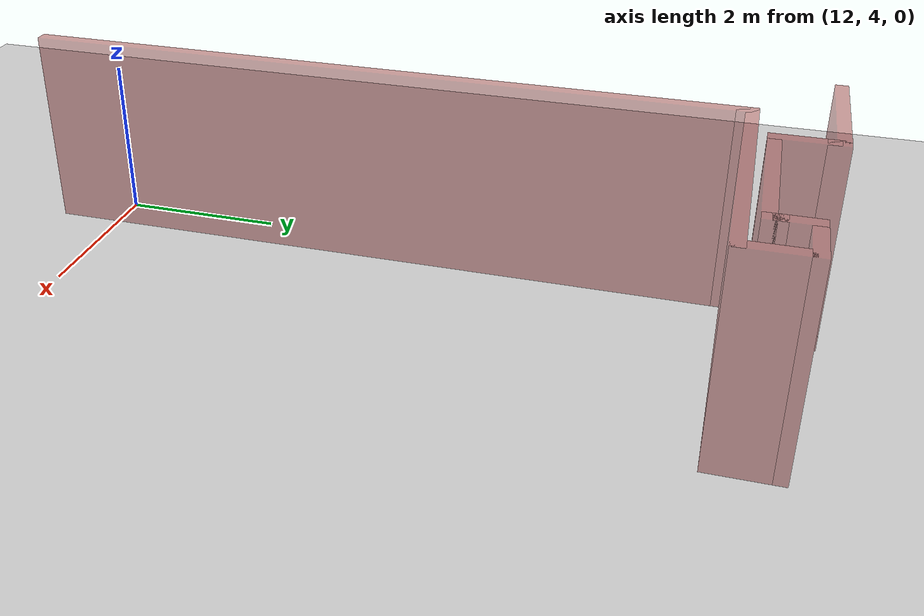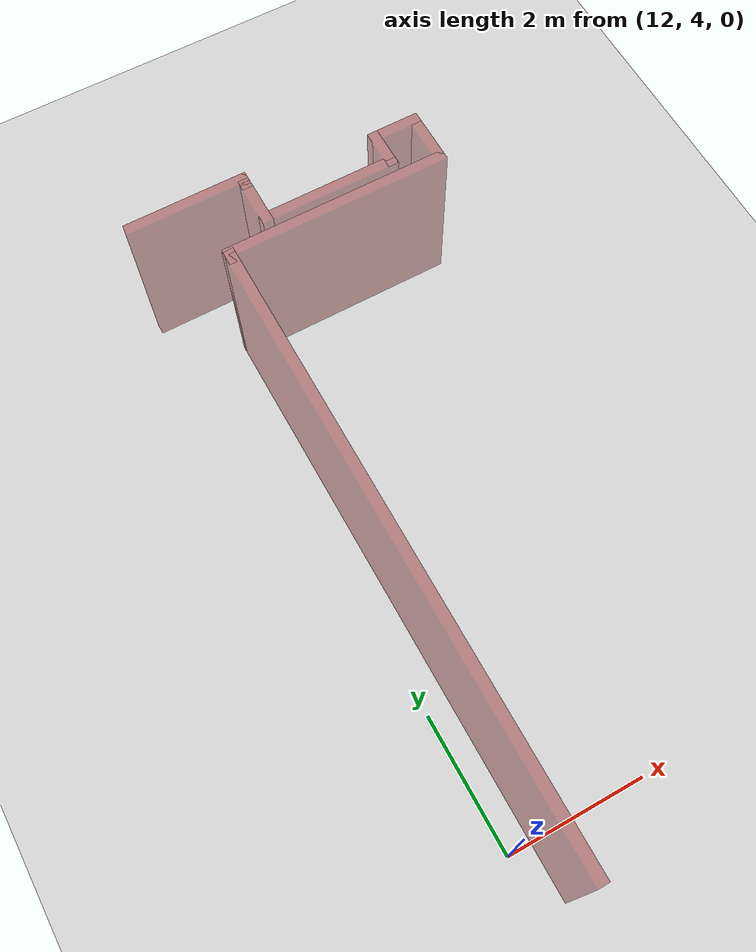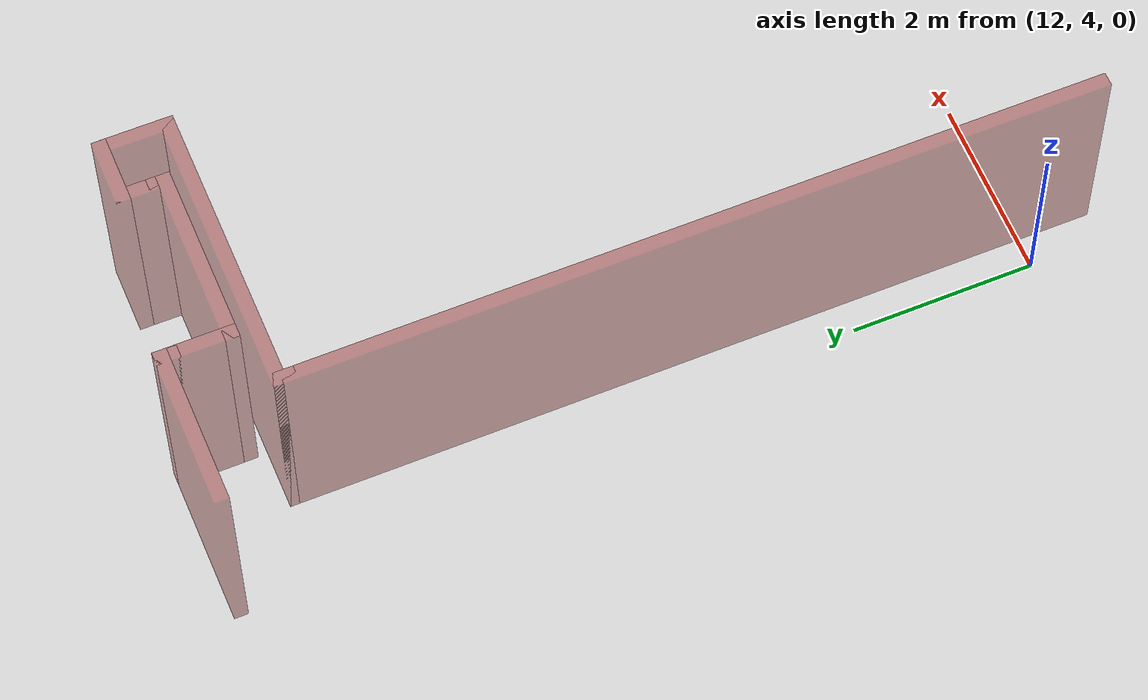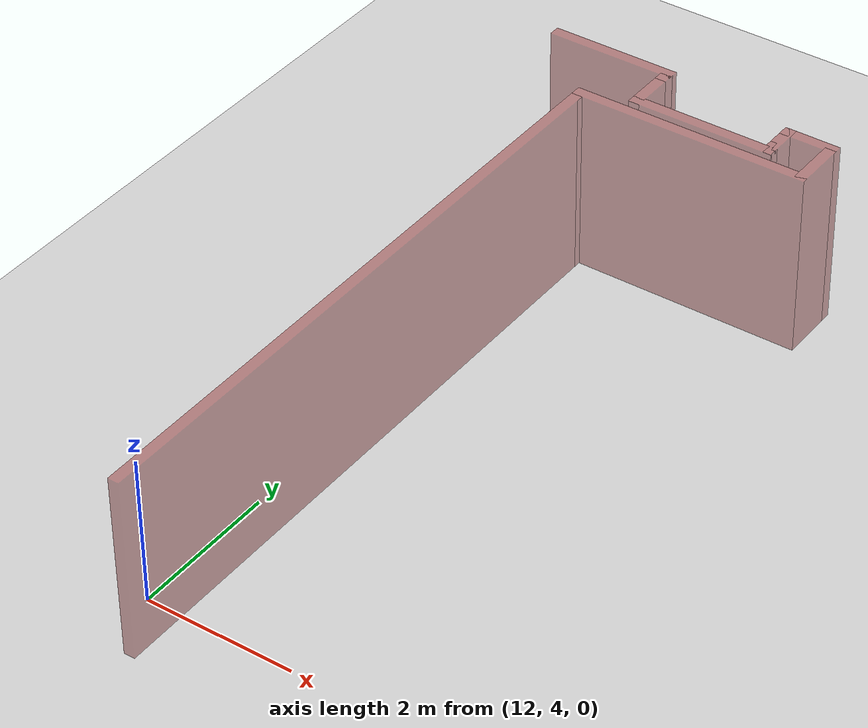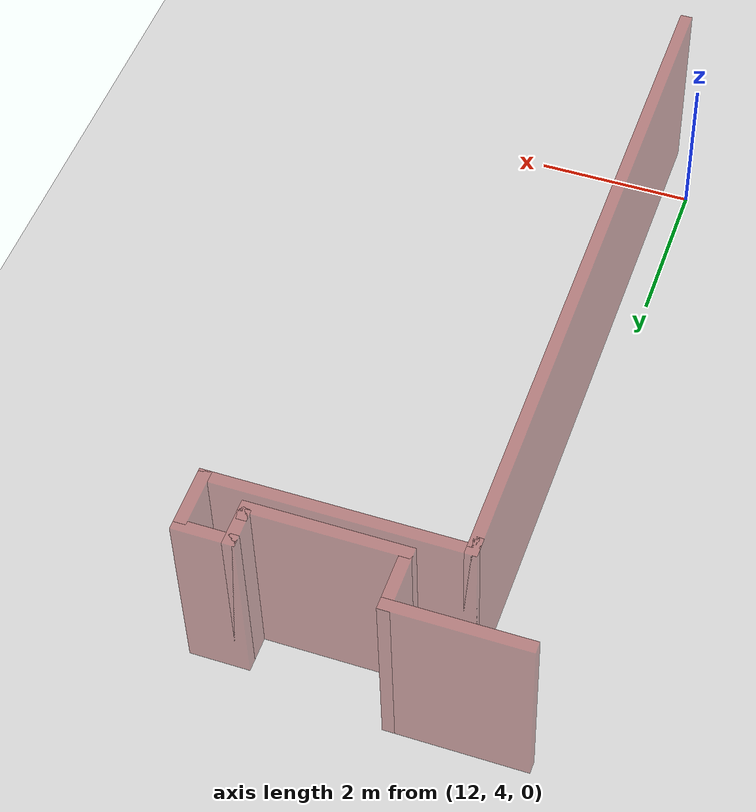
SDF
<sdf version="1.7">
 <world name="default">
  <model name="ground_plane">
   <static>1</static>
   <link name="link">
    <collision name="collision">
     <geometry><plane><normal>0 0 1</normal><size>150 150</size></plane></geometry>
     <surface>
      <contact><collide_bitmask>65535</collide_bitmask></contact>
      <friction><ode><mu>100</mu><mu2>50</mu2></ode></friction>
     </surface>
    </collision>
    <visual name="visual">
     <cast_shadows>0</cast_shadows>
     <geometry><plane><normal>0 0 1</normal><size>100 100</size></plane></geometry>
     <material>
      <ambient>0.8 0.8 0.8 1.0</ambient>
      <diffuse>0.8 0.8 0.8 1.0</diffuse>
      <specular>0.1 0.1 0.1 1.0</specular>
      <pbr><metal><albedo>0.8 0.8 0.8 1.0</albedo><metalness>0.0</metalness><roughness>0.9</roughness></metal></pbr>
     </material>
    </visual>
   </link>
  </model>
  <model name="acopian_4th_floor">
   <pose>-1.6204 7.29653 0 0 -0 0</pose>
   <link name="Wall_267">
    <collision name="Wall_267_Collision">
     <geometry><box><size>8.75 0.15 2.5</size></box></geometry>
     <pose>0 0 1.25 0 -0 0</pose>
    </collision>
    <visual name="Wall_267_Visual">
     <pose>0 0 1.25 0 -0 0</pose>
     <geometry><box><size>8.75 0.15 2.5</size></box></geometry>
     <material>
      <ambient>0.5 0.0 0.0 0.4</ambient>
      <diffuse>0.5 0.0 0.0 0.4</diffuse>
      <specular>0.1 0.1 0.1 0.4</specular>
      <pbr><metal><albedo>0.5 0.0 0.0 0.4</albedo><metalness>0.1</metalness><roughness>0.8</roughness></metal></pbr>
     </material>
     <meta><layer>0</layer></meta>
    </visual>
    <pose>14.0253 0.271527 0 0 -0 1.5708</pose>
   </link>
   <link name="Wall_269">
    <collision name="Wall_269_Collision">
     <geometry><box><size>0.25 0.15 2.5</size></box></geometry>
     <pose>0 0 1.25 0 -0 0</pose>
    </collision>
    <visual name="Wall_269_Visual">
     <pose>0 0 1.25 0 -0 0</pose>
     <geometry><box><size>0.25 0.15 2.5</size></box></geometry>
     <material>
      <ambient>0.5 0.0 0.0 0.4</ambient>
      <diffuse>0.5 0.0 0.0 0.4</diffuse>
      <specular>0.1 0.1 0.1 0.4</specular>
      <pbr><metal><albedo>0.5 0.0 0.0 0.4</albedo><metalness>0.1</metalness><roughness>0.8</roughness></metal></pbr>
     </material>
     <meta><layer>0</layer></meta>
    </visual>
    <pose>14.0253 4.62153 0 0 -0 1.5708</pose>
   </link>
   <link name="Wall_270">
    <collision name="Wall_270_Collision">
     <geometry><box><size>3.25 0.15 2.5</size></box></geometry>
     <pose>0 0 1.25 0 -0 0</pose>
    </collision>
    <visual name="Wall_270_Visual">
     <pose>0 0 1.25 0 -0 0</pose>
     <geometry><box><size>3.25 0.15 2.5</size></box></geometry>
     <material>
      <ambient>0.5 0.0 0.0 0.4</ambient>
      <diffuse>0.5 0.0 0.0 0.4</diffuse>
      <specular>0.1 0.1 0.1 0.4</specular>
      <pbr><metal><albedo>0.5 0.0 0.0 0.4</albedo><metalness>0.1</metalness><roughness>0.8</roughness></metal></pbr>
     </material>
     <meta><layer>0</layer></meta>
    </visual>
    <pose>15.5753 4.67153 0 0 -0 0</pose>
   </link>
   <link name="Wall_271">
    <collision name="Wall_271_Collision">
     <geometry><box><size>0.75 0.15 2.5</size></box></geometry>
     <pose>0 0 1.25 0 -0 0</pose>
    </collision>
    <visual name="Wall_271_Visual">
     <pose>0 0 1.25 0 -0 0</pose>
     <geometry><box><size>0.75 0.15 2.5</size></box></geometry>
     <material>
      <ambient>0.5 0.0 0.0 0.4</ambient>
      <diffuse>0.5 0.0 0.0 0.4</diffuse>
      <specular>0.1 0.1 0.1 0.4</specular>
      <pbr><metal><albedo>0.5 0.0 0.0 0.4</albedo><metalness>0.1</metalness><roughness>0.8</roughness></metal></pbr>
     </material>
     <meta><layer>0</layer></meta>
    </visual>
    <pose>17.1253 4.97153 0 0 -0 1.5708</pose>
   </link>
   <link name="Wall_273">
    <collision name="Wall_273_Collision">
     <geometry><box><size>0.75 0.15 2.5</size></box></geometry>
     <pose>0 0 1.25 0 -0 0</pose>
    </collision>
    <visual name="Wall_273_Visual">
     <pose>0 0 1.25 0 -0 0</pose>
     <geometry><box><size>0.75 0.15 2.5</size></box></geometry>
     <material>
      <ambient>0.5 0.0 0.0 0.4</ambient>
      <diffuse>0.5 0.0 0.0 0.4</diffuse>
      <specular>0.1 0.1 0.1 0.4</specular>
      <pbr><metal><albedo>0.5 0.0 0.0 0.4</albedo><metalness>0.1</metalness><roughness>0.8</roughness></metal></pbr>
     </material>
     <meta><layer>0</layer></meta>
    </visual>
    <pose>16.8253 5.37153 0 0 -0 3.14159</pose>
   </link>
   <link name="Wall_274">
    <collision name="Wall_274_Collision">
     <geometry><box><size>0.5 0.15 2.5</size></box></geometry>
     <pose>0 0 1.25 0 -0 0</pose>
    </collision>
    <visual name="Wall_274_Visual">
     <pose>0 0 1.25 0 -0 0</pose>
     <geometry><box><size>0.5 0.15 2.5</size></box></geometry>
     <material>
      <ambient>0.5 0.0 0.0 0.4</ambient>
      <diffuse>0.5 0.0 0.0 0.4</diffuse>
      <specular>0.1 0.1 0.1 0.4</specular>
      <pbr><metal><albedo>0.5 0.0 0.0 0.4</albedo><metalness>0.1</metalness><roughness>0.8</roughness></metal></pbr>
     </material>
     <meta><layer>0</layer></meta>
    </visual>
    <pose>16.5253 5.19653 0 0 -0 -1.5708</pose>
   </link>
   <link name="Wall_275">
    <collision name="Wall_275_Collision">
     <geometry><box><size>0.25 0.15 2.5</size></box></geometry>
     <pose>0 0 1.25 0 -0 0</pose>
    </collision>
    <visual name="Wall_275_Visual">
     <pose>0 0 1.25 0 -0 0</pose>
     <geometry><box><size>0.25 0.15 2.5</size></box></geometry>
     <material>
      <ambient>0.5 0.0 0.0 0.4</ambient>
      <diffuse>0.5 0.0 0.0 0.4</diffuse>
      <specular>0.1 0.1 0.1 0.4</specular>
      <pbr><metal><albedo>0.5 0.0 0.0 0.4</albedo><metalness>0.1</metalness><roughness>0.8</roughness></metal></pbr>
     </material>
     <meta><layer>0</layer></meta>
    </visual>
    <pose>16.5253 4.97153 0 0 -0 -1.5708</pose>
   </link>
   <link name="Wall_276">
    <collision name="Wall_276_Collision">
     <geometry><box><size>2 0.15 2.5</size></box></geometry>
     <pose>0 0 1.25 0 -0 0</pose>
    </collision>
    <visual name="Wall_276_Visual">
     <pose>0 0 1.25 0 -0 0</pose>
     <geometry><box><size>2 0.15 2.5</size></box></geometry>
     <material>
      <ambient>0.5 0.0 0.0 0.4</ambient>
      <diffuse>0.5 0.0 0.0 0.4</diffuse>
      <specular>0.1 0.1 0.1 0.4</specular>
      <pbr><metal><albedo>0.5 0.0 0.0 0.4</albedo><metalness>0.1</metalness><roughness>0.8</roughness></metal></pbr>
     </material>
     <meta><layer>0</layer></meta>
    </visual>
    <pose>15.6003 4.92153 0 0 -0 3.14159</pose>
   </link>
   <link name="Wall_277">
    <collision name="Wall_277_Collision">
     <geometry><box><size>0.75 0.15 2.5</size></box></geometry>
     <pose>0 0 1.25 0 -0 0</pose>
    </collision>
    <visual name="Wall_277_Visual">
     <pose>0 0 1.25 0 -0 0</pose>
     <geometry><box><size>0.75 0.15 2.5</size></box></geometry>
     <material>
      <ambient>0.5 0.0 0.0 0.4</ambient>
      <diffuse>0.5 0.0 0.0 0.4</diffuse>
      <specular>0.1 0.1 0.1 0.4</specular>
      <pbr><metal><albedo>0.5 0.0 0.0 0.4</albedo><metalness>0.1</metalness><roughness>0.8</roughness></metal></pbr>
     </material>
     <meta><layer>0</layer></meta>
    </visual>
    <pose>14.6753 5.22153 0 0 -0 1.5708</pose>
   </link>
   <link name="Wall_278">
    <collision name="Wall_278_Collision">
     <geometry><box><size>0.25 0.15 2.5</size></box></geometry>
     <pose>0 0 1.25 0 -0 0</pose>
    </collision>
    <visual name="Wall_278_Visual">
     <pose>0 0 1.25 0 -0 0</pose>
     <geometry><box><size>0.25 0.15 2.5</size></box></geometry>
     <material>
      <ambient>0.5 0.0 0.0 0.4</ambient>
      <diffuse>0.5 0.0 0.0 0.4</diffuse>
      <specular>0.1 0.1 0.1 0.4</specular>
      <pbr><metal><albedo>0.5 0.0 0.0 0.4</albedo><metalness>0.1</metalness><roughness>0.8</roughness></metal></pbr>
     </material>
     <meta><layer>0</layer></meta>
    </visual>
    <pose>14.6753 5.57153 0 0 -0 1.5708</pose>
   </link>
   <link name="Wall_279">
    <collision name="Wall_279_Collision">
     <geometry><box><size>1.75 0.15 2.5</size></box></geometry>
     <pose>0 0 1.25 0 -0 0</pose>
    </collision>
    <visual name="Wall_279_Visual">
     <pose>0 0 1.25 0 -0 0</pose>
     <geometry><box><size>1.75 0.15 2.5</size></box></geometry>
     <material>
      <ambient>0.5 0.0 0.0 0.4</ambient>
      <diffuse>0.5 0.0 0.0 0.4</diffuse>
      <specular>0.1 0.1 0.1 0.4</specular>
      <pbr><metal><albedo>0.5 0.0 0.0 0.4</albedo><metalness>0.1</metalness><roughness>0.8</roughness></metal></pbr>
     </material>
     <meta><layer>0</layer></meta>
    </visual>
    <pose>13.8753 5.62153 0 0 -0 3.14159</pose>
   </link>
   <static>1</static>
  </model>
 </world>
</sdf>
